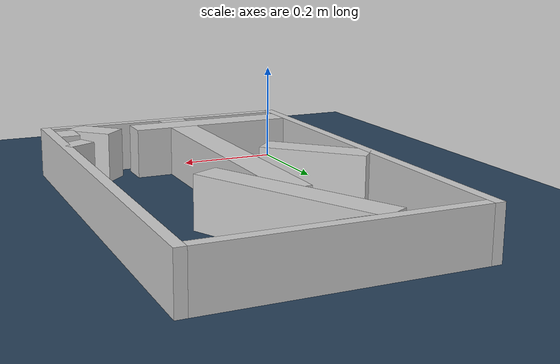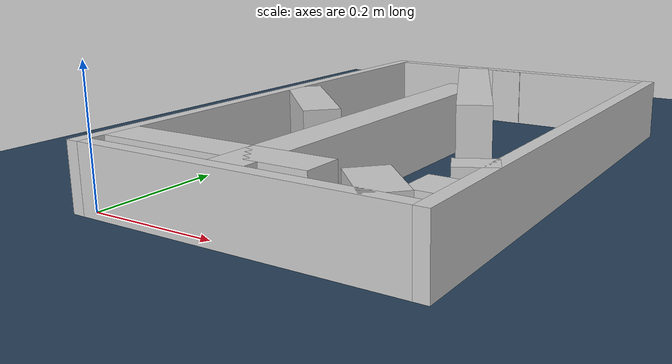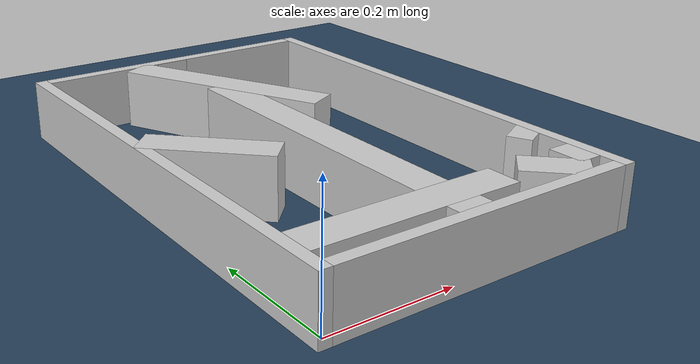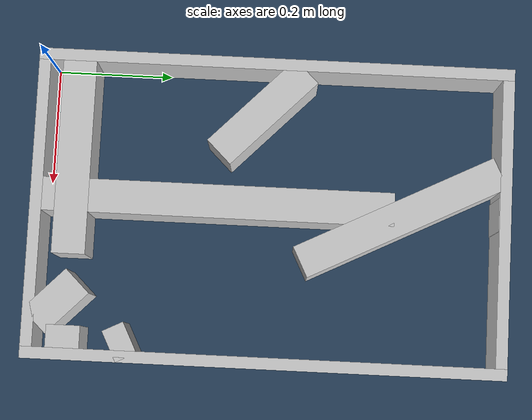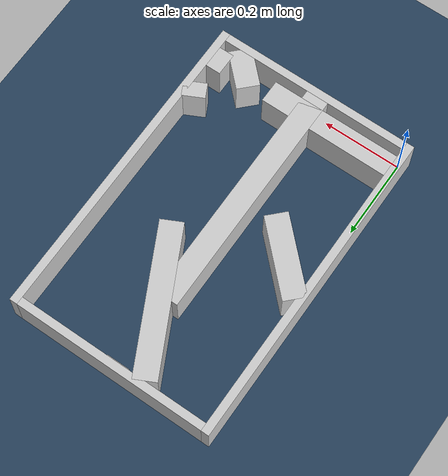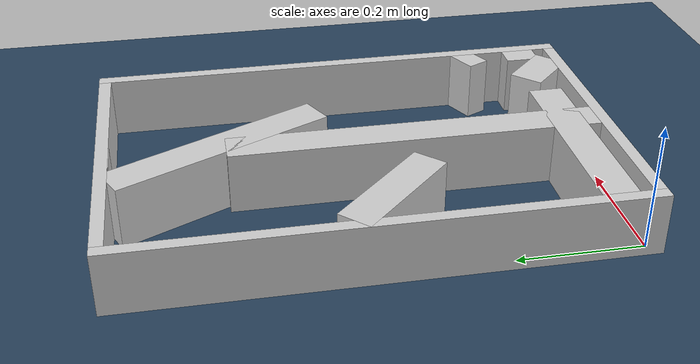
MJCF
<?xml version="1.0" ?>
<mujoco model="generated_real_template">
  <compiler angle="degree"/>
  <option timestep="0.002" integrator="implicitfast" iterations="100" cone="elliptic"/>
  <default>
    <geom density="1"/>
  </default>
  <asset>
    <texture builtin="gradient" height="3072" rgb1="0.3 0.5 0.7" rgb2="0 0 0" type="skybox" width="512"/>
    <texture builtin="checker" height="300" mark="edge" markrgb="0.8 0.8 0.8" name="groundplane" rgb1="0.2 0.3 0.4" rgb2="0.1 0.2 0.3" type="2d" width="300"/>
    <material name="groundplane" reflectance="0.2" texrepeat="5 5" texture="groundplane" texuniform="true"/>
  </asset>
  <worldbody>
    <light dir="0 0 -1" directional="true" pos="0 0 1.5"/>
    <geom name="floor" type="plane" condim="4" friction="0.5 0.005 0.001" material="groundplane" size="0 0 0.05"/>
    <body name="walls">
      <geom name="wall_boundary_left" type="box" condim="4" friction="1.0 0.005 0.0001" rgba="0.8 0.8 0.8 1" pos="-0.010000 0.387500 0.050000" euler="0 0 0.000000" size="0.010000 0.407500 0.050000"/>
      <geom name="wall_boundary_right" type="box" condim="4" friction="1.0 0.005 0.0001" rgba="0.8 0.8 0.8 1" pos="0.500000 0.387500 0.050000" euler="0 0 0.000000" size="0.010000 0.407500 0.050000"/>
      <geom name="wall_boundary_bottom" type="box" condim="4" friction="1.0 0.005 0.0001" rgba="0.8 0.8 0.8 1" pos="0.245000 -0.010000 0.050000" euler="0 0 0.000000" size="0.245000 0.010000 0.050000"/>
      <geom name="wall_boundary_top" type="box" condim="4" friction="1.0 0.005 0.0001" rgba="0.8 0.8 0.8 1" pos="0.245000 0.785000 0.050000" euler="0 0 0.000000" size="0.245000 0.010000 0.050000"/>
      <geom name="wall_inner_1_1" type="box" condim="4" friction="1.0 0.005 0.0001" rgba="0.8 0.8 0.8 1" pos="0.231299 0.298623 0.050000" euler="0 0 90.000000" size="0.298623 0.028500 0.050000"/>
      <geom name="wall_inner_1_2" type="box" condim="4" friction="1.0 0.005 0.0001" rgba="0.8 0.8 0.8 1" pos="0.231299 0.774263 0.050000" euler="0 0 90.000000" size="0.000737 0.028500 0.050000"/>
      <geom name="wall_inner_2_1" type="box" condim="4" friction="1.0 0.005 0.0001" rgba="0.8 0.8 0.8 1" pos="0.244027 0.608323 0.050000" euler="0 0 -63.386780" size="0.186429 0.028500 0.050000"/>
      <geom name="wall_inner_2_2" type="box" condim="4" friction="1.0 0.005 0.0001" rgba="0.8 0.8 0.8 1" pos="0.475828 0.145693 0.050000" euler="0 0 -63.386780" size="0.019399 0.028500 0.050000"/>
      <geom name="wall_inner_3_1" type="box" condim="4" friction="1.0 0.005 0.0001" rgba="0.8 0.8 0.8 1" pos="0.165839 0.050458 0.050000" euler="0 0 0.000000" size="0.165839 0.028500 0.050000"/>
      <geom name="wall_inner_3_2" type="box" condim="4" friction="1.0 0.005 0.0001" rgba="0.8 0.8 0.8 1" pos="0.470860 0.050458 0.050000" euler="0 0 0.000000" size="0.019140 0.028500 0.050000"/>
      <geom name="wall_inner_4_1" type="box" condim="4" friction="1.0 0.005 0.0001" rgba="0.8 0.8 0.8 1" pos="0.412456 0.035048 0.050000" euler="0 0 135.622876" size="0.049582 0.028500 0.050000"/>
      <geom name="wall_inner_4_2" type="box" condim="4" friction="1.0 0.005 0.0001" rgba="0.8 0.8 0.8 1" pos="0.073420 0.366791 0.050000" euler="0 0 135.622876" size="0.102721 0.028500 0.050000"/>
    </body>
  </worldbody>
</mujoco>
